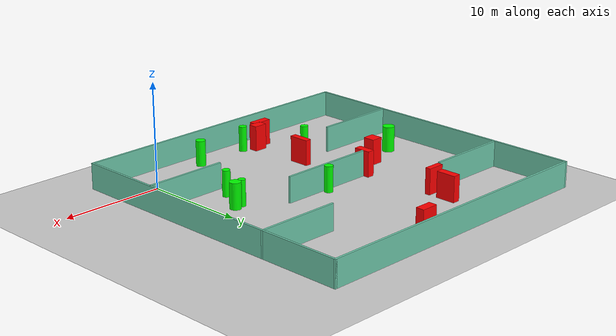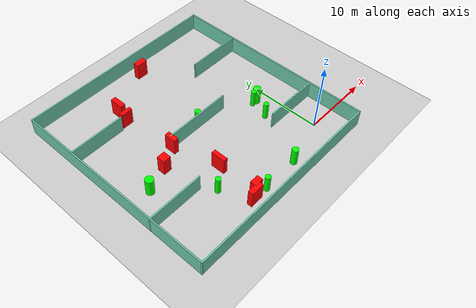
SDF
<sdf version="1.7">
 <world name="default">
  <light name="sun" type="directional">
   <pose>0 0 10 0 -0 0</pose>
   <diffuse>0.8 0.8 0.8 1</diffuse>
   <specular>0.2 0.2 0.2 1</specular>
   <attenuation>
    <range>1000</range>
    <constant>0.9</constant>
    <linear>0.01</linear>
    <quadratic>0.001</quadratic>
   </attenuation>
   <direction>-0.5 0.1 -0.9</direction>
   <spot><inner_angle>0</inner_angle><outer_angle>0</outer_angle><falloff>0</falloff></spot>
  </light>
  <model name="ground_plane">
   <static>1</static>
   <link name="link">
    <collision name="collision">
     <geometry><plane><normal>0 0 1</normal><size>100 100</size></plane></geometry>
     <surface>
      <contact><collide_bitmask>65535</collide_bitmask></contact>
      <friction><ode><mu>100</mu><mu2>50</mu2></ode></friction>
     </surface>
    </collision>
    <visual name="visual">
     <cast_shadows>0</cast_shadows>
     <geometry><plane><normal>0 0 1</normal><size>100 100</size></plane></geometry>
     <material>
      <script><uri>file://media/materials/scripts/gazebo.material</uri><name>Gazebo/Grey</name></script>
     </material>
    </visual>
   </link>
  </model>
  <gravity>0 0 -9.8</gravity>
  <magnetic_field>6e-06 2.3e-05 -4.2e-05</magnetic_field>
  <atmosphere type="adiabatic"/>
  <physics type="ode">
   <max_step_size>0.001</max_step_size>
   <real_time_factor>1</real_time_factor>
   <real_time_update_rate>1000</real_time_update_rate>
  </physics>
  <scene><ambient>0.4 0.4 0.4 1</ambient><background>0.7 0.7 0.7 1</background><shadows>1</shadows></scene>
  <spherical_coordinates>
   <surface_model>EARTH_WGS84</surface_model>
   <latitude_deg>0</latitude_deg>
   <longitude_deg>0</longitude_deg>
   <elevation>0</elevation>
   <heading_deg>0</heading_deg>
  </spherical_coordinates>
  <model name="my_base_walls">
   <link name="Wall_10">
    <collision name="Wall_10_Collision">
     <geometry><box><size>8.2 0.2 2.5</size></box></geometry>
     <pose>0 0 1.25 0 -0 0</pose>
    </collision>
    <visual name="Wall_10_Visual">
     <pose>0 0 1.25 0 -0 0</pose>
     <geometry><box><size>8.2 0.2 2.5</size></box></geometry>
     <material>
      <script><uri>file://media/materials/scripts/gazebo.material</uri><name>Gazebo/Grey</name></script>
      <ambient>0.435294 0.796078 0.67451 1</ambient>
     </material>
     <meta><layer>0</layer></meta>
    </visual>
    <pose>-11 -7 0 0 -0 0</pose>
   </link>
   <link name="Wall_12">
    <collision name="Wall_12_Collision">
     <geometry><box><size>8.2 0.2 2.5</size></box></geometry>
     <pose>0 0 1.25 0 -0 0</pose>
    </collision>
    <visual name="Wall_12_Visual">
     <pose>0 0 1.25 0 -0 0</pose>
     <geometry><box><size>8.2 0.2 2.5</size></box></geometry>
     <material>
      <script><uri>file://media/materials/scripts/gazebo.material</uri><name>Gazebo/Grey</name></script>
      <ambient>0.435294 0.796078 0.67451 1</ambient>
     </material>
     <meta><layer>0</layer></meta>
    </visual>
    <pose>-11 7 0 0 -0 0</pose>
   </link>
   <link name="Wall_14">
    <collision name="Wall_14_Collision">
     <geometry><box><size>8.2 0.2 2.5</size></box></geometry>
     <pose>0 0 1.25 0 -0 0</pose>
    </collision>
    <visual name="Wall_14_Visual">
     <pose>0 0 1.25 0 -0 0</pose>
     <geometry><box><size>8.2 0.2 2.5</size></box></geometry>
     <material>
      <script><uri>file://media/materials/scripts/gazebo.material</uri><name>Gazebo/Grey</name></script>
      <ambient>0.435294 0.796078 0.67451 1</ambient>
     </material>
     <meta><layer>0</layer></meta>
    </visual>
    <pose>11 7 0 0 -0 3.14159</pose>
   </link>
   <link name="Wall_16">
    <collision name="Wall_16_Collision">
     <geometry><box><size>10.2 0.2 2.5</size></box></geometry>
     <pose>0 0 1.25 0 -0 0</pose>
    </collision>
    <visual name="Wall_16_Visual">
     <pose>0 0 1.25 0 -0 0</pose>
     <geometry><box><size>10.2 0.2 2.5</size></box></geometry>
     <material>
      <script><uri>file://media/materials/scripts/gazebo.material</uri><name>Gazebo/Grey</name></script>
      <ambient>0.435294 0.796078 0.67451 1</ambient>
     </material>
     <meta><layer>0</layer></meta>
    </visual>
    <pose>0 0 0 0 -0 3.14159</pose>
   </link>
   <link name="Wall_2">
    <collision name="Wall_2_Collision">
     <geometry><box><size>30.2 0.2 2.5</size></box></geometry>
     <pose>0 0 1.25 0 -0 0</pose>
    </collision>
    <visual name="Wall_2_Visual">
     <pose>0 0 1.25 0 -0 0</pose>
     <geometry><box><size>30.2 0.2 2.5</size></box></geometry>
     <material>
      <script><uri>file://media/materials/scripts/gazebo.material</uri><name>Gazebo/Grey</name></script>
      <ambient>0.435294 0.796078 0.67451 1</ambient>
     </material>
     <meta><layer>0</layer></meta>
    </visual>
    <pose>0 -15 0 0 -0 3.14159</pose>
   </link>
   <link name="Wall_3">
    <collision name="Wall_3_Collision">
     <geometry><box><size>30.2 0.2 2.5</size></box></geometry>
     <pose>0 0 1.25 0 -0 0</pose>
    </collision>
    <visual name="Wall_3_Visual">
     <pose>0 0 1.25 0 -0 0</pose>
     <geometry><box><size>30.2 0.2 2.5</size></box></geometry>
     <material>
      <script><uri>file://media/materials/scripts/gazebo.material</uri><name>Gazebo/Grey</name></script>
      <ambient>0.435294 0.796078 0.67451 1</ambient>
     </material>
     <meta><layer>0</layer></meta>
    </visual>
    <pose>-15 0 0 0 -0 1.5708</pose>
   </link>
   <link name="Wall_4">
    <collision name="Wall_4_Collision">
     <geometry><box><size>30.2 0.2 2.5</size></box></geometry>
     <pose>0 0 1.25 0 -0 0</pose>
    </collision>
    <visual name="Wall_4_Visual">
     <pose>0 0 1.25 0 -0 0</pose>
     <geometry><box><size>30.2 0.2 2.5</size></box></geometry>
     <material>
      <script><uri>file://media/materials/scripts/gazebo.material</uri><name>Gazebo/Grey</name></script>
      <ambient>0.435294 0.796078 0.67451 1</ambient>
     </material>
     <meta><layer>0</layer></meta>
    </visual>
    <pose>0 15 0 0 -0 0</pose>
   </link>
   <link name="Wall_6">
    <collision name="Wall_6_Collision">
     <geometry><box><size>30.2 0.2 2.5</size></box></geometry>
     <pose>0 0 1.25 0 -0 0</pose>
    </collision>
    <visual name="Wall_6_Visual">
     <pose>0 0 1.25 0 -0 0</pose>
     <geometry><box><size>30.2 0.2 2.5</size></box></geometry>
     <material>
      <script><uri>file://media/materials/scripts/gazebo.material</uri><name>Gazebo/Grey</name></script>
      <ambient>0.435294 0.796078 0.67451 1</ambient>
     </material>
     <meta><layer>0</layer></meta>
    </visual>
    <pose>15 0 0 0 -0 1.5708</pose>
   </link>
   <link name="Wall_8">
    <collision name="Wall_8_Collision">
     <geometry><box><size>8.2 0.2 2.5</size></box></geometry>
     <pose>0 0 1.25 0 -0 0</pose>
    </collision>
    <visual name="Wall_8_Visual">
     <pose>0 0 1.25 0 -0 0</pose>
     <geometry><box><size>8.2 0.2 2.5</size></box></geometry>
     <material>
      <script><uri>file://media/materials/scripts/gazebo.material</uri><name>Gazebo/Grey</name></script>
      <ambient>0.435294 0.796078 0.67451 1</ambient>
     </material>
     <meta><layer>0</layer></meta>
    </visual>
    <pose>11 -7 0 0 -0 3.14159</pose>
   </link>
   <static>1</static>
   <pose>-11 11 0 0 -0 0</pose>
  </model>
  <model name="cylinder1">
   <static>1</static>
   <link name="link">
    <inertial>
     <mass>1</mass>
     <inertia><ixx>0.5</ixx><ixy>0</ixy><ixz>0</ixz><iyy>0.5</iyy><iyz>0</iyz><izz>1</izz></inertia>
    </inertial>
    <collision name="collision">
     <geometry><cylinder><radius>0.3817281633117975</radius><length>2.5</length></cylinder></geometry>
    </collision>
    <visual name="visual">
     <geometry><cylinder><radius>0.3817281633117975</radius><length>2.5</length></cylinder></geometry>
     <material>
      <ambient>0 1 0 1</ambient>
      <diffuse>0 1 0 1</diffuse>
      <specular>0.1 0.1 0.1 1</specular>
      <emissive>0 0 0 0</emissive>
     </material>
    </visual>
   </link>
   <pose>-12.415393148183364 -1.981609412083166 1.25 0 0 0</pose>
  </model>
  <model name="cylinder2">
   <static>1</static>
   <link name="link">
    <inertial>
     <mass>1</mass>
     <inertia><ixx>0.5</ixx><ixy>0</ixy><ixz>0</ixz><iyy>0.5</iyy><iyz>0</iyz><izz>1</izz></inertia>
    </inertial>
    <collision name="collision">
     <geometry><cylinder><radius>0.5807561446953651</radius><length>2.5</length></cylinder></geometry>
    </collision>
    <visual name="visual">
     <geometry><cylinder><radius>0.5807561446953651</radius><length>2.5</length></cylinder></geometry>
     <material>
      <ambient>0 1 0 1</ambient>
      <diffuse>0 1 0 1</diffuse>
      <specular>0.1 0.1 0.1 1</specular>
      <emissive>0 0 0 0</emissive>
     </material>
    </visual>
   </link>
   <pose>-22.31683426448048 8.02702088238007 1.25 0 0 0</pose>
  </model>
  <model name="cylinder3">
   <static>1</static>
   <link name="link">
    <inertial>
     <mass>1</mass>
     <inertia><ixx>0.5</ixx><ixy>0</ixy><ixz>0</ixz><iyy>0.5</iyy><iyz>0</iyz><izz>1</izz></inertia>
    </inertial>
    <collision name="collision">
     <geometry><cylinder><radius>0.4597566175340406</radius><length>2.5</length></cylinder></geometry>
    </collision>
    <visual name="visual">
     <geometry><cylinder><radius>0.4597566175340406</radius><length>2.5</length></cylinder></geometry>
     <material>
      <ambient>0 1 0 1</ambient>
      <diffuse>0 1 0 1</diffuse>
      <specular>0.1 0.1 0.1 1</specular>
      <emissive>0 0 0 0</emissive>
     </material>
    </visual>
   </link>
   <pose>-6.87329990359706 -1.8106920357222918 1.25 0 0 0</pose>
  </model>
  <model name="cylinder4">
   <static>1</static>
   <link name="link">
    <inertial>
     <mass>1</mass>
     <inertia><ixx>0.5</ixx><ixy>0</ixy><ixz>0</ixz><iyy>0.5</iyy><iyz>0</iyz><izz>1</izz></inertia>
    </inertial>
    <collision name="collision">
     <geometry><cylinder><radius>0.3421554500045876</radius><length>2.5</length></cylinder></geometry>
    </collision>
    <visual name="visual">
     <geometry><cylinder><radius>0.3421554500045876</radius><length>2.5</length></cylinder></geometry>
     <material>
      <ambient>0 1 0 1</ambient>
      <diffuse>0 1 0 1</diffuse>
      <specular>0.1 0.1 0.1 1</specular>
      <emissive>0 0 0 0</emissive>
     </material>
    </visual>
   </link>
   <pose>-2.594564481608611 8.469482211957992 1.25 0 0 0</pose>
  </model>
  <model name="cylinder5">
   <static>1</static>
   <link name="link">
    <inertial>
     <mass>1</mass>
     <inertia><ixx>0.5</ixx><ixy>0</ixy><ixz>0</ixz><iyy>0.5</iyy><iyz>0</iyz><izz>1</izz></inertia>
    </inertial>
    <collision name="collision">
     <geometry><cylinder><radius>0.37463478240383535</radius><length>2.5</length></cylinder></geometry>
    </collision>
    <visual name="visual">
     <geometry><cylinder><radius>0.37463478240383535</radius><length>2.5</length></cylinder></geometry>
     <material>
      <ambient>0 1 0 1</ambient>
      <diffuse>0 1 0 1</diffuse>
      <specular>0.1 0.1 0.1 1</specular>
      <emissive>0 0 0 0</emissive>
     </material>
    </visual>
   </link>
   <pose>-3.210096981527215 5.779204403073706 1.25 0 0 0</pose>
  </model>
  <model name="cylinder6">
   <static>1</static>
   <link name="link">
    <inertial>
     <mass>1</mass>
     <inertia><ixx>0.5</ixx><ixy>0</ixy><ixz>0</ixz><iyy>0.5</iyy><iyz>0</iyz><izz>1</izz></inertia>
    </inertial>
    <collision name="collision">
     <geometry><cylinder><radius>0.5382009940720038</radius><length>2.5</length></cylinder></geometry>
    </collision>
    <visual name="visual">
     <geometry><cylinder><radius>0.5382009940720038</radius><length>2.5</length></cylinder></geometry>
     <material>
      <ambient>0 1 0 1</ambient>
      <diffuse>0 1 0 1</diffuse>
      <specular>0.1 0.1 0.1 1</specular>
      <emissive>0 0 0 0</emissive>
     </material>
    </visual>
   </link>
   <pose>-1.7801780350680936 8.509827418905054 1.25 0 0 0</pose>
  </model>
  <model name="cylinder7">
   <static>1</static>
   <link name="link">
    <inertial>
     <mass>1</mass>
     <inertia><ixx>0.5</ixx><ixy>0</ixy><ixz>0</ixz><iyy>0.5</iyy><iyz>0</iyz><izz>1</izz></inertia>
    </inertial>
    <collision name="collision">
     <geometry><cylinder><radius>0.37913583380499105</radius><length>2.5</length></cylinder></geometry>
    </collision>
    <visual name="visual">
     <geometry><cylinder><radius>0.37913583380499105</radius><length>2.5</length></cylinder></geometry>
     <material>
      <ambient>0 1 0 1</ambient>
      <diffuse>0 1 0 1</diffuse>
      <specular>0.1 0.1 0.1 1</specular>
      <emissive>0 0 0 0</emissive>
     </material>
    </visual>
   </link>
   <pose>-16.680396284314476 2.1528626098377046 1.25 0 0 0</pose>
  </model>
  <model name="cylinder8">
   <static>1</static>
   <link name="link">
    <inertial>
     <mass>1</mass>
     <inertia><ixx>0.5</ixx><ixy>0</ixy><ixz>0</ixz><iyy>0.5</iyy><iyz>0</iyz><izz>1</izz></inertia>
    </inertial>
    <collision name="collision">
     <geometry><cylinder><radius>0.4096991940927238</radius><length>2.5</length></cylinder></geometry>
    </collision>
    <visual name="visual">
     <geometry><cylinder><radius>0.4096991940927238</radius><length>2.5</length></cylinder></geometry>
     <material>
      <ambient>0 1 0 1</ambient>
      <diffuse>0 1 0 1</diffuse>
      <specular>0.1 0.1 0.1 1</specular>
      <emissive>0 0 0 0</emissive>
     </material>
    </visual>
   </link>
   <pose>-10.361107733483442 11.507448436358413 1.25 0 0 0</pose>
  </model>
  <model name="box1">
   <static>1</static>
   <link name="link">
    <inertial>
     <mass>1</mass>
     <inertia><ixx>0.083</ixx><ixy>0</ixy><ixz>0</ixz><iyy>0.083</iyy><iyz>0</iyz><izz>0.083</izz></inertia>
    </inertial>
    <collision name="collision">
     <geometry><box><size>1.161425039996852 1.1578903584195053 2.5</size></box></geometry>
    </collision>
    <visual name="visual">
     <geometry><box><size>1.161425039996852 1.1578903584195053 2.5</size></box></geometry>
     <material>
      <ambient>1 0 0 1</ambient>
      <diffuse>1 0 0 1</diffuse>
      <specular>0.1 0.1 0.1 1</specular>
      <emissive>0 0 0 0</emissive>
     </material>
    </visual>
    <sensor name="my_contact" type="contact">
     <contact><collision>box_collision</collision><topic>__default_topic__</topic></contact>
    </sensor>
   </link>
   <pose>-18.74728555906225 9.1933336785686 1.25 0 0 0</pose>
  </model>
  <model name="box2">
   <static>1</static>
   <link name="link">
    <inertial>
     <mass>1</mass>
     <inertia><ixx>0.083</ixx><ixy>0</ixy><ixz>0</ixz><iyy>0.083</iyy><iyz>0</iyz><izz>0.083</izz></inertia>
    </inertial>
    <collision name="collision">
     <geometry><box><size>0.7270184462094671 1.6433142282225939 2.5</size></box></geometry>
    </collision>
    <visual name="visual">
     <geometry><box><size>0.7270184462094671 1.6433142282225939 2.5</size></box></geometry>
     <material>
      <ambient>1 0 0 1</ambient>
      <diffuse>1 0 0 1</diffuse>
      <specular>0.1 0.1 0.1 1</specular>
      <emissive>0 0 0 0</emissive>
     </material>
    </visual>
    <sensor name="my_contact" type="contact">
     <contact><collision>box_collision</collision><topic>__default_topic__</topic></contact>
    </sensor>
   </link>
   <pose>-15.793421439869533 10.84342631839379 1.25 0 0 0</pose>
  </model>
  <model name="box3">
   <static>1</static>
   <link name="link">
    <inertial>
     <mass>1</mass>
     <inertia><ixx>0.083</ixx><ixy>0</ixy><ixz>0</ixz><iyy>0.083</iyy><iyz>0</iyz><izz>0.083</izz></inertia>
    </inertial>
    <collision name="collision">
     <geometry><box><size>0.6117030266130771 2.041142356897744 2.5</size></box></geometry>
    </collision>
    <visual name="visual">
     <geometry><box><size>0.6117030266130771 2.041142356897744 2.5</size></box></geometry>
     <material>
      <ambient>1 0 0 1</ambient>
      <diffuse>1 0 0 1</diffuse>
      <specular>0.1 0.1 0.1 1</specular>
      <emissive>0 0 0 0</emissive>
     </material>
    </visual>
    <sensor name="my_contact" type="contact">
     <contact><collision>box_collision</collision><topic>__default_topic__</topic></contact>
    </sensor>
   </link>
   <pose>-13.959915970860697 4.390035465357984 1.25 0 0 0</pose>
  </model>
  <model name="box4">
   <static>1</static>
   <link name="link">
    <inertial>
     <mass>1</mass>
     <inertia><ixx>0.083</ixx><ixy>0</ixy><ixz>0</ixz><iyy>0.083</iyy><iyz>0</iyz><izz>0.083</izz></inertia>
    </inertial>
    <collision name="collision">
     <geometry><box><size>1.3186114719799011 0.8672740871441854 2.5</size></box></geometry>
    </collision>
    <visual name="visual">
     <geometry><box><size>1.3186114719799011 0.8672740871441854 2.5</size></box></geometry>
     <material>
      <ambient>1 0 0 1</ambient>
      <diffuse>1 0 0 1</diffuse>
      <specular>0.1 0.1 0.1 1</specular>
      <emissive>0 0 0 0</emissive>
     </material>
    </visual>
    <sensor name="my_contact" type="contact">
     <contact><collision>box_collision</collision><topic>__default_topic__</topic></contact>
    </sensor>
   </link>
   <pose>-13.810342890237091 -1.3514447028697267 1.25 0 0 0</pose>
  </model>
  <model name="box5">
   <static>1</static>
   <link name="link">
    <inertial>
     <mass>1</mass>
     <inertia><ixx>0.083</ixx><ixy>0</ixy><ixz>0</ixz><iyy>0.083</iyy><iyz>0</iyz><izz>0.083</izz></inertia>
    </inertial>
    <collision name="collision">
     <geometry><box><size>0.7382217785695614 1.9641907598699957 2.5</size></box></geometry>
    </collision>
    <visual name="visual">
     <geometry><box><size>0.7382217785695614 1.9641907598699957 2.5</size></box></geometry>
     <material>
      <ambient>1 0 0 1</ambient>
      <diffuse>1 0 0 1</diffuse>
      <specular>0.1 0.1 0.1 1</specular>
      <emissive>0 0 0 0</emissive>
     </material>
    </visual>
    <sensor name="my_contact" type="contact">
     <contact><collision>box_collision</collision><topic>__default_topic__</topic></contact>
    </sensor>
   </link>
   <pose>-16.359308642768408 20.333296012828267 1.25 0 0 0</pose>
  </model>
  <model name="box6">
   <static>1</static>
   <link name="link">
    <inertial>
     <mass>1</mass>
     <inertia><ixx>0.083</ixx><ixy>0</ixy><ixz>0</ixz><iyy>0.083</iyy><iyz>0</iyz><izz>0.083</izz></inertia>
    </inertial>
    <collision name="collision">
     <geometry><box><size>1.660539552525217 0.8231939546948919 2.5</size></box></geometry>
    </collision>
    <visual name="visual">
     <geometry><box><size>1.660539552525217 0.8231939546948919 2.5</size></box></geometry>
     <material>
      <ambient>1 0 0 1</ambient>
      <diffuse>1 0 0 1</diffuse>
      <specular>0.1 0.1 0.1 1</specular>
      <emissive>0 0 0 0</emissive>
     </material>
    </visual>
    <sensor name="my_contact" type="contact">
     <contact><collision>box_collision</collision><topic>__default_topic__</topic></contact>
    </sensor>
   </link>
   <pose>-8.998097624644199 24.019713553029607 1.25 0 0 0</pose>
  </model>
  <model name="box7">
   <static>1</static>
   <link name="link">
    <inertial>
     <mass>1</mass>
     <inertia><ixx>0.083</ixx><ixy>0</ixy><ixz>0</ixz><iyy>0.083</iyy><iyz>0</iyz><izz>0.083</izz></inertia>
    </inertial>
    <collision name="collision">
     <geometry><box><size>1.9701504998401003 0.710335352354259 2.5</size></box></geometry>
    </collision>
    <visual name="visual">
     <geometry><box><size>1.9701504998401003 0.710335352354259 2.5</size></box></geometry>
     <material>
      <ambient>1 0 0 1</ambient>
      <diffuse>1 0 0 1</diffuse>
      <specular>0.1 0.1 0.1 1</specular>
      <emissive>0 0 0 0</emissive>
     </material>
    </visual>
    <sensor name="my_contact" type="contact">
     <contact><collision>box_collision</collision><topic>__default_topic__</topic></contact>
    </sensor>
   </link>
   <pose>-14.697009358448515 -1.9836305741260087 1.25 0 0 0</pose>
  </model>
  <model name="box8">
   <static>1</static>
   <link name="link">
    <inertial>
     <mass>1</mass>
     <inertia><ixx>0.083</ixx><ixy>0</ixy><ixz>0</ixz><iyy>0.083</iyy><iyz>0</iyz><izz>0.083</izz></inertia>
    </inertial>
    <collision name="collision">
     <geometry><box><size>1.68996373793845 0.530686826583481 2.5</size></box></geometry>
    </collision>
    <visual name="visual">
     <geometry><box><size>1.68996373793845 0.530686826583481 2.5</size></box></geometry>
     <material>
      <ambient>1 0 0 1</ambient>
      <diffuse>1 0 0 1</diffuse>
      <specular>0.1 0.1 0.1 1</specular>
      <emissive>0 0 0 0</emissive>
     </material>
    </visual>
    <sensor name="my_contact" type="contact">
     <contact><collision>box_collision</collision><topic>__default_topic__</topic></contact>
    </sensor>
   </link>
   <pose>-16.800993538141814 18.33281202323575 1.25 0 0 0</pose>
  </model>
 </world>
</sdf>
